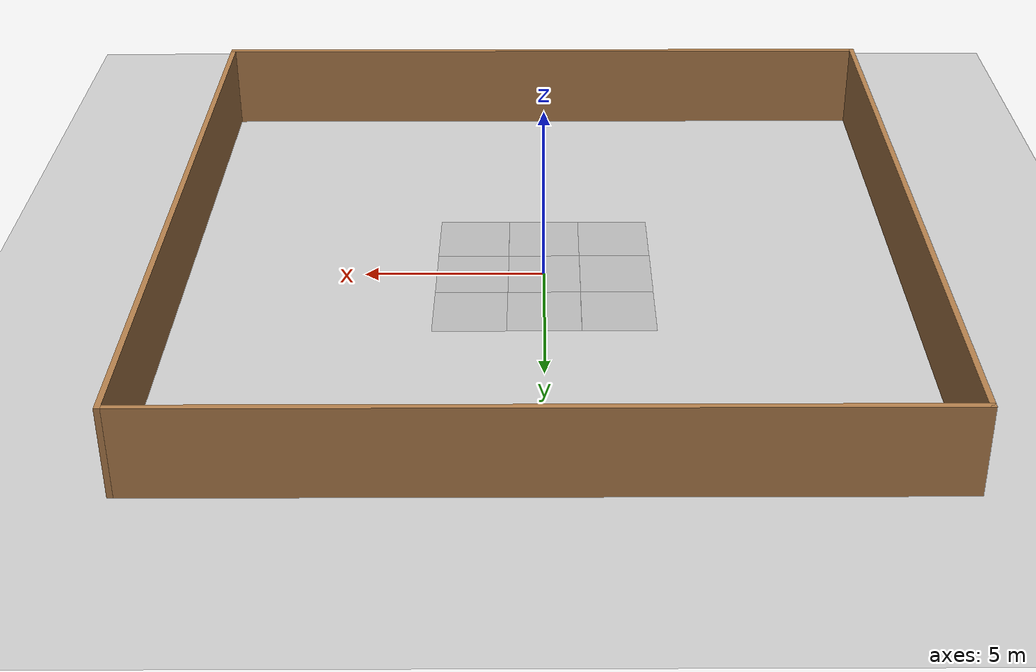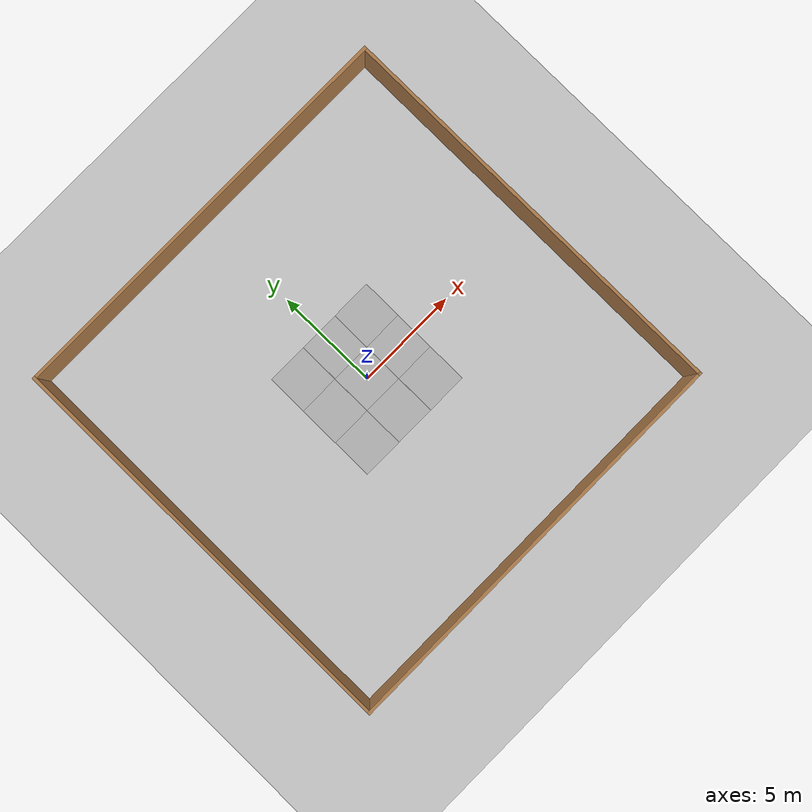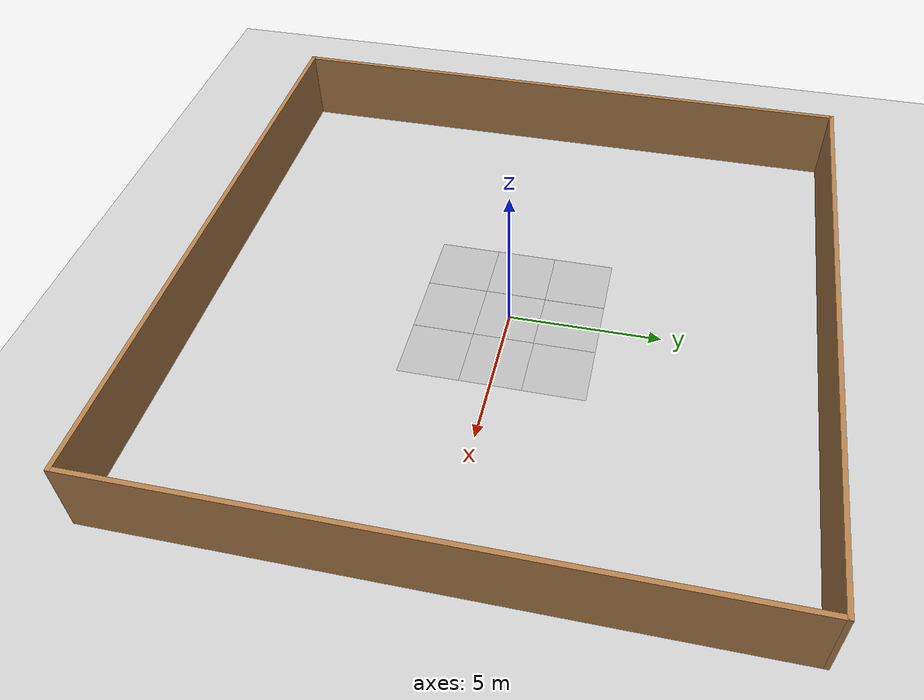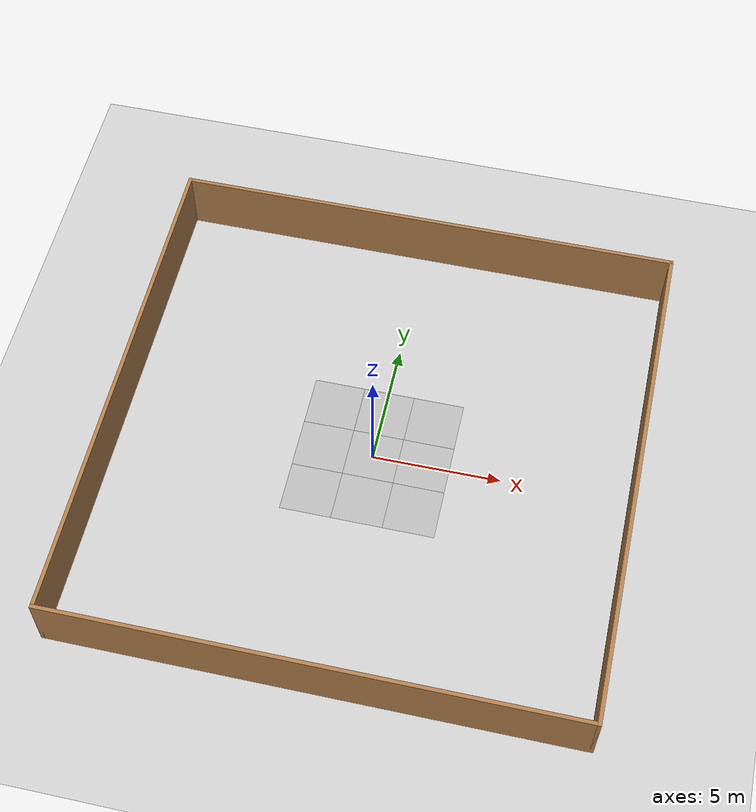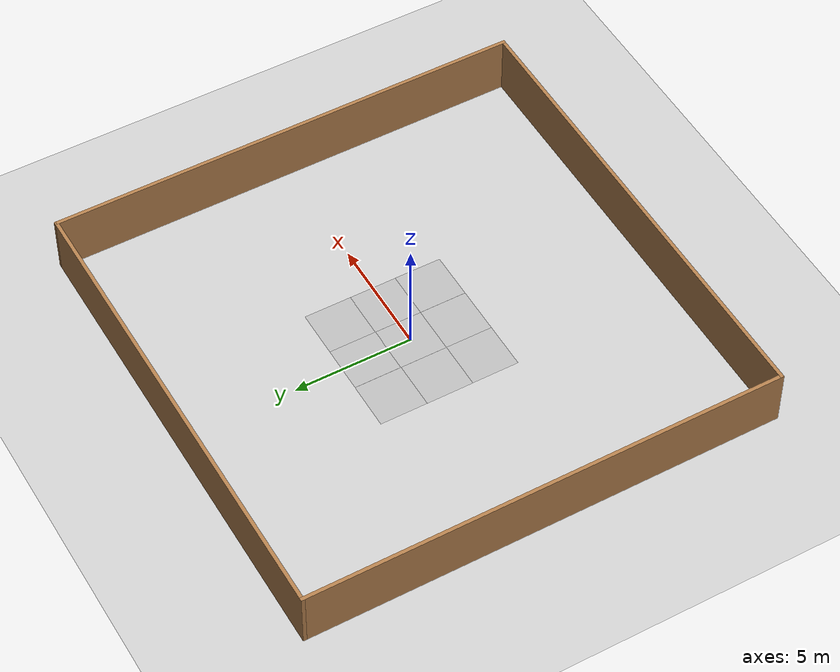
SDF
<sdf version="1.6">
 <world name="default">
  <light name="sun" type="directional">
   <pose>0 0 10 0 -0 0</pose>
   <diffuse>0.8 0.8 0.8 1</diffuse>
   <specular>0.2 0.2 0.2 1</specular>
   <attenuation>
    <range>1000</range>
    <constant>0.9</constant>
    <linear>0.01</linear>
    <quadratic>0.001</quadratic>
   </attenuation>
   <direction>-0.5 0.1 -0.9</direction>
  </light>
  <plugin name="ros_interface_plugin" filename="librotors_gazebo_ros_interface_plugin.so"/>
  <model name="ground_plane">
   <static>1</static>
   <link name="link">
    <collision name="collision">
     <geometry><plane><normal>0 0 1</normal><size>100 100</size></plane></geometry>
     <surface><friction><ode><mu>100</mu><mu2>50</mu2></ode></friction></surface>
    </collision>
    <visual name="visual">
     <cast_shadows>0</cast_shadows>
     <geometry><plane><normal>0 0 1</normal><size>100 100</size></plane></geometry>
     <material>
      <script><uri>file://media/materials/scripts/gazebo.material</uri><name>Gazebo/Grey</name></script>
     </material>
    </visual>
   </link>
  </model>
  <gravity>0 0 -9.8</gravity>
  <magnetic_field>6e-06 2.3e-05 -4.2e-05</magnetic_field>
  <atmosphere type="adiabatic"/>
  <physics name="default_physics" default="0" type="ode">
   <ode>
    <solver>
     <type>quick</type>
     <iters>10</iters>
     <sor>1.3</sor>
     <use_dynamic_moi_rescaling>0</use_dynamic_moi_rescaling>
    </solver>
    <constraints>
     <cfm>0</cfm>
     <erp>0.2</erp>
     <contact_max_correcting_vel>1000</contact_max_correcting_vel>
     <contact_surface_layer>0.001</contact_surface_layer>
    </constraints>
   </ode>
   <max_step_size>0.001</max_step_size>
   <real_time_factor>1</real_time_factor>
   <real_time_update_rate>1000</real_time_update_rate>
  </physics>
  <scene><ambient>0.4 0.4 0.4 1</ambient><background>0.7 0.7 0.7 1</background><shadows>1</shadows></scene>
  <spherical_coordinates>
   <surface_model>EARTH_WGS84</surface_model>
   <latitude_deg>47.3667</latitude_deg>
   <longitude_deg>8.55</longitude_deg>
   <elevation>500</elevation>
   <heading_deg>0</heading_deg>
  </spherical_coordinates>
  <model name="home_mat">
   <link name="landing_mat">
    <pose>0 0 0.02 0 -0 0</pose>
    <visual name="mat">
     <geometry><mesh><uri>model://landing_mat/landing_mat.dae</uri></mesh></geometry>
     <material><shader type="pixel"/></material>
    </visual>
   </link>
   <static>1</static>
   <pose>-2.00718 0.011235 0 0 -0 0</pose>
  </model>
  <model name="home_mat_clone">
   <link name="landing_mat">
    <pose>0 0 0.02 0 -0 0</pose>
    <visual name="mat">
     <geometry><mesh><uri>model://landing_mat/landing_mat.dae</uri></mesh></geometry>
     <material><shader type="pixel"/></material>
    </visual>
   </link>
   <static>1</static>
   <pose>1.9977 1.99819 0 0 -0 0</pose>
  </model>
  <model name="home_mat_clone_0">
   <link name="landing_mat">
    <pose>0 0 0.02 0 -0 0</pose>
    <visual name="mat">
     <geometry><mesh><uri>model://landing_mat/landing_mat.dae</uri></mesh></geometry>
     <material><shader type="pixel"/></material>
    </visual>
   </link>
   <static>1</static>
   <pose>-2.00355 1.99948 0 0 -0 0</pose>
  </model>
  <model name="home_mat_clone_1">
   <link name="landing_mat">
    <pose>0 0 0.02 0 -0 0</pose>
    <visual name="mat">
     <geometry><mesh><uri>model://landing_mat/landing_mat.dae</uri></mesh></geometry>
     <material><shader type="pixel"/></material>
    </visual>
   </link>
   <static>1</static>
   <pose>0.001777 1.99711 0 0 -0 0</pose>
  </model>
  <model name="home_mat_clone_2">
   <link name="landing_mat">
    <pose>0 0 0.02 0 -0 0</pose>
    <visual name="mat">
     <geometry><mesh><uri>model://landing_mat/landing_mat.dae</uri></mesh></geometry>
     <material><shader type="pixel"/></material>
    </visual>
   </link>
   <static>1</static>
   <pose>-0.005691 0.013978 0 0 -0 0</pose>
  </model>
  <model name="home_mat_clone_3">
   <link name="landing_mat">
    <pose>0 0 0.02 0 -0 0</pose>
    <visual name="mat">
     <geometry><mesh><uri>model://landing_mat/landing_mat.dae</uri></mesh></geometry>
     <material><shader type="pixel"/></material>
    </visual>
   </link>
   <static>1</static>
   <pose>1.99537 0.010116 0 0 -0 0</pose>
  </model>
  <model name="home_mat_clone_4">
   <link name="landing_mat">
    <pose>0 0 0.02 0 -0 0</pose>
    <visual name="mat">
     <geometry><mesh><uri>model://landing_mat/landing_mat.dae</uri></mesh></geometry>
     <material><shader type="pixel"/></material>
    </visual>
   </link>
   <static>1</static>
   <pose>1.99965 -1.98372 0 0 -0 0</pose>
  </model>
  <model name="home_mat_clone_5">
   <link name="landing_mat">
    <pose>0 0 0.02 0 -0 0</pose>
    <visual name="mat">
     <geometry><mesh><uri>model://landing_mat/landing_mat.dae</uri></mesh></geometry>
     <material><shader type="pixel"/></material>
    </visual>
   </link>
   <static>1</static>
   <pose>-0.003398 -1.98326 0 0 -0 0</pose>
  </model>
  <model name="home_mat_clone_6">
   <link name="landing_mat">
    <pose>0 0 0.02 0 -0 0</pose>
    <visual name="mat">
     <geometry><mesh><uri>model://landing_mat/landing_mat.dae</uri></mesh></geometry>
     <material><shader type="pixel"/></material>
    </visual>
   </link>
   <static>1</static>
   <pose>-2.00203 -1.98208 0 0 -0 0</pose>
  </model>
  <model name="wall_general">
   <link name="Wall_4">
    <collision name="Wall_4_Collision">
     <geometry><box><size>20.15 0.15 2.5</size></box></geometry>
     <pose>0 0 1.25 0 -0 0</pose>
    </collision>
    <visual name="Wall_4_Visual">
     <pose>0 0 1.25 0 -0 0</pose>
     <geometry><box><size>20.15 0.15 2.5</size></box></geometry>
     <material>
      <script><uri>file://media/materials/scripts/gazebo.material</uri><name>Gazebo/Wood</name></script>
      <ambient>1 1 1 1</ambient>
     </material>
     <meta><layer>0</layer></meta>
    </visual>
    <pose>-10 0 0 0 -0 -1.5708</pose>
   </link>
   <link name="Wall_5">
    <collision name="Wall_5_Collision">
     <geometry><box><size>20.15 0.15 2.5</size></box></geometry>
     <pose>0 0 1.25 0 -0 0</pose>
    </collision>
    <visual name="Wall_5_Visual">
     <pose>0 0 1.25 0 -0 0</pose>
     <geometry><box><size>20.15 0.15 2.5</size></box></geometry>
     <material>
      <script><uri>file://media/materials/scripts/gazebo.material</uri><name>Gazebo/Wood</name></script>
      <ambient>1 1 1 1</ambient>
     </material>
     <meta><layer>0</layer></meta>
    </visual>
    <pose>0 -10 0 0 -0 0</pose>
   </link>
   <link name="Wall_6">
    <collision name="Wall_6_Collision">
     <geometry><box><size>20.15 0.15 2.5</size></box></geometry>
     <pose>0 0 1.25 0 -0 0</pose>
    </collision>
    <visual name="Wall_6_Visual">
     <pose>0 0 1.25 0 -0 0</pose>
     <geometry><box><size>20.15 0.15 2.5</size></box></geometry>
     <material>
      <script><uri>file://media/materials/scripts/gazebo.material</uri><name>Gazebo/Wood</name></script>
      <ambient>1 1 1 1</ambient>
     </material>
     <meta><layer>0</layer></meta>
    </visual>
    <pose>10 0 0 0 -0 1.5708</pose>
   </link>
   <link name="Wall_7">
    <collision name="Wall_7_Collision">
     <geometry><box><size>20.15 0.15 2.5</size></box></geometry>
     <pose>0 0 1.25 0 -0 0</pose>
    </collision>
    <visual name="Wall_7_Visual">
     <pose>0 0 1.25 0 -0 0</pose>
     <geometry><box><size>20.15 0.15 2.5</size></box></geometry>
     <material>
      <script><uri>file://media/materials/scripts/gazebo.material</uri><name>Gazebo/Wood</name></script>
      <ambient>1 1 1 1</ambient>
     </material>
     <meta><layer>0</layer></meta>
    </visual>
    <pose>0 10 0 0 -0 3.14159</pose>
   </link>
   <static>1</static>
  </model>
 </world>
</sdf>
